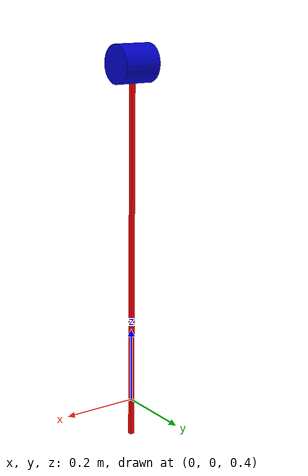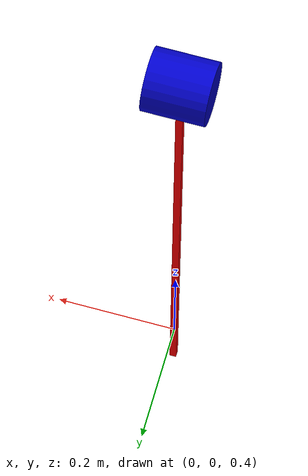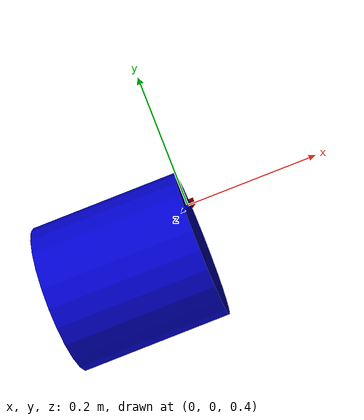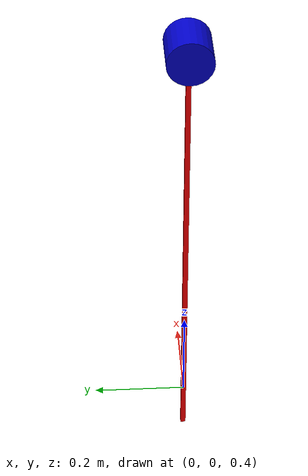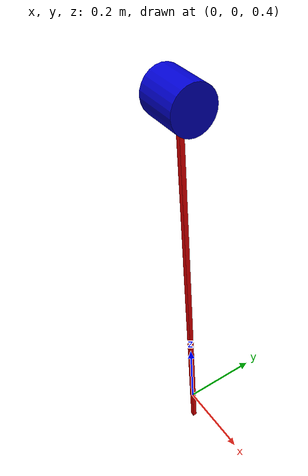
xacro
<?xml version="1.0"?>

<robot name="pendulum" xmlns:xacro="http://ros.org/wiki/xacro">

    <xacro:property name="length" value="1.0"/>
    <xacro:property name="width" value="${length/90.0}"/>
    <xacro:property name="mass" value="1.0"/>
    <xacro:property name="mu" value="0.01"/>

    <material name="omni/Blue">
      <color rgba="0 0 0.8 1"/>
    </material>
    <material name="omni/Red">
      <color rgba="1 0 0 1"/>
    </material>
    <material name="omni/White">
      <color rgba="1 1 1 1"/>
    </material>
    <material name="omni/Green">
      <color rgba="0 1 0 1"/>
    </material>
    <material name="omni/Yellow">
      <color rgba="1 1 0 1"/>
    </material>
    <material name="omni/LightGrey">
      <color rgba="0.6 0.6 0.6 1"/>
    </material>
    <material name="omni/DarkGrey">
      <color rgba="0.4 0.4 0.4 1"/>
    </material>

    <link name="base_link">
    </link>

    <link name="visual_joint">
      <visual>
        <origin rpy="0 ${3.14/2.0} 0" xyz="0 0 0"/>
        <geometry>
          <cylinder length="${length/10.0}" radius="${length/20.0}"/>
        </geometry>
        <material name="omni/Blue"/>
      </visual>
    </link>

    <link name="pendulum">
      <visual>
        <origin rpy="0 0 0" xyz="0 0 ${-length/2}"/>
        <geometry>
          <box size="${width} ${width} ${length}"/>
        </geometry>
        <material name="omni/Red"/>
      </visual>
      <collision>
          <origin rpy="0 0 0" xyz="0 0 ${-length/2}"/>
          <geometry>
          <box size="${width} ${width} ${length}"/>
          </geometry>
      </collision>
      <inertial>
        <!-- CENTER OF MASS -->
        <origin rpy="0 0 0" xyz="0 0 ${-length/2}"/>
        <mass value="${mass}"/>
        <!-- box inertia: 1/12*m(y^2+z^2), ... -->
        <inertia ixx="${1/12 * mass * (width**2 + length**2)}" ixy="0" ixz="0" iyy="${1/12 * mass * (width**2 + length**2)}" iyz="0" izz="${1/12 * mass * (width**2 + width**2)}"/>
      </inertial>
    </link>

    <joint name="base2pendulum_joint" type="revolute">
      <origin rpy="0 0 0" xyz="0 0 ${1.3 * length}"/>
      <parent link="base_link"/>
      <child link="pendulum"/>
      <dynamics damping="0.01" friction="0.0"/>
      <limit effort="2" lower="-20" upper="20" velocity="10.0"/>
      <axis xyz="1 0 0"/>
    </joint>

    <joint name="base2visualJoint_joint" type="fixed">
      <origin rpy="0 0 0" xyz="0 0 ${1.3 * length}"/>
      <parent link="base_link"/>
      <child link="visual_joint"/>
    </joint>

</robot>
